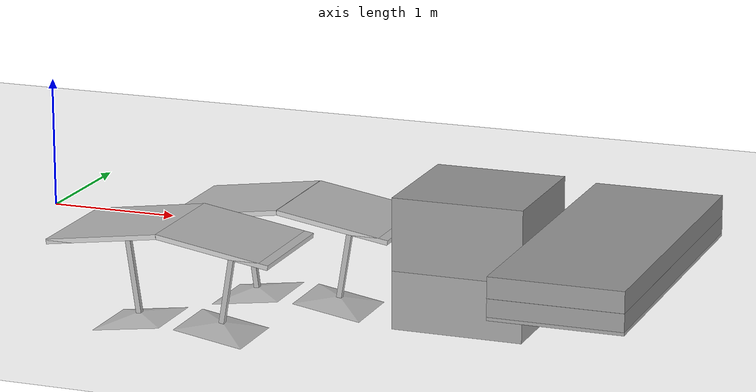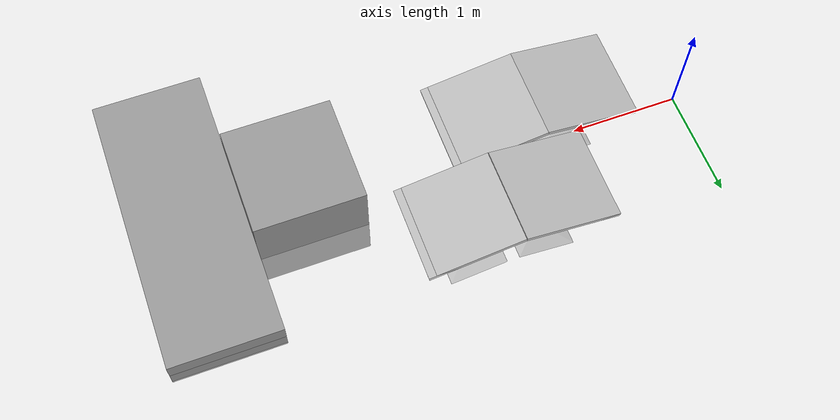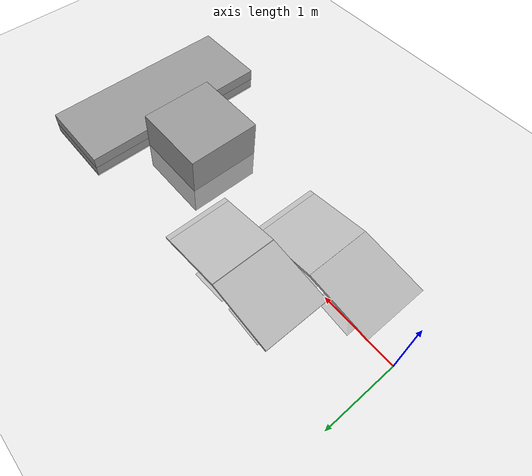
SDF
<sdf version="1.6">
 <world name="default">
  <light name="sun" type="directional">
   <pose>0 0 10 0 -0 0</pose>
   <diffuse>0.8 0.8 0.8 1</diffuse>
   <specular>0.2 0.2 0.2 1</specular>
   <attenuation>
    <range>1000</range>
    <constant>0.9</constant>
    <linear>0.01</linear>
    <quadratic>0.001</quadratic>
   </attenuation>
   <direction>-0.5 0.1 -0.9</direction>
  </light>
  <model name="ground_plane">
   <static>1</static>
   <link name="link">
    <collision name="collision">
     <geometry><plane><normal>0 0 1</normal><size>100 100</size></plane></geometry>
     <surface>
      <contact><collide_bitmask>65535</collide_bitmask></contact>
      <friction><ode><mu>400</mu><mu2>200</mu2></ode></friction>
     </surface>
    </collision>
    <visual name="visual">
     <cast_shadows>0</cast_shadows>
     <geometry><plane><normal>0 0 1</normal><size>100 100</size></plane></geometry>
     <material>
      <script><uri>file://media/materials/scripts/gazebo.material</uri><name>Gazebo/Grey</name></script>
     </material>
    </visual>
   </link>
  </model>
  <gravity>0 0 -9.8</gravity>
  <magnetic_field>6e-06 2.3e-05 -4.2e-05</magnetic_field>
  <atmosphere type="adiabatic"/>
  <physics name="default_physics" default="0" type="ode">
   <max_step_size>0.001</max_step_size>
   <real_time_factor>1</real_time_factor>
   <real_time_update_rate>1000</real_time_update_rate>
  </physics>
  <scene><ambient>0.4 0.4 0.4 1</ambient><background>0.7 0.7 0.7 1</background><shadows>1</shadows></scene>
  <spherical_coordinates>
   <surface_model>EARTH_WGS84</surface_model>
   <latitude_deg>0</latitude_deg>
   <longitude_deg>0</longitude_deg>
   <elevation>0</elevation>
   <heading_deg>0</heading_deg>
  </spherical_coordinates>
  <model name="cafe_table">
   <static>1</static>
   <link name="link">
    <collision name="surface">
     <pose>0 0 0.755 0 -0 0</pose>
     <geometry><box><size>0.913 0.913 0.04</size></box></geometry>
     <surface><friction><ode><mu>100</mu><mu2>50</mu2></ode></friction></surface>
    </collision>
    <collision name="column">
     <pose>0 0 0.37 0 -0 0</pose>
     <geometry><box><size>0.042 0.042 0.74</size></box></geometry>
    </collision>
    <collision name="base">
     <pose>0 0 0.02 0 -0 0</pose>
     <geometry><box><size>0.56 0.56 0.04</size></box></geometry>
    </collision>
    <visual name="visual">
     <geometry><mesh><uri>model://cafe_table/meshes/cafe_table.dae</uri></mesh></geometry>
    </visual>
   </link>
   <pose>0.919635 -0.460707 -0.701289 0 -0.140073 0</pose>
  </model>
  <model name="cafe_table_clone">
   <static>1</static>
   <link name="link">
    <collision name="surface">
     <pose>0 0 0.755 0 -0 0</pose>
     <geometry><box><size>0.913 0.913 0.04</size></box></geometry>
     <surface><friction><ode><mu>100</mu><mu2>50</mu2></ode></friction></surface>
    </collision>
    <collision name="column">
     <pose>0 0 0.37 0 -0 0</pose>
     <geometry><box><size>0.042 0.042 0.74</size></box></geometry>
    </collision>
    <collision name="base">
     <pose>0 0 0.02 0 -0 0</pose>
     <geometry><box><size>0.56 0.56 0.04</size></box></geometry>
    </collision>
    <visual name="visual">
     <geometry><mesh><uri>model://cafe_table/meshes/cafe_table.dae</uri></mesh></geometry>
    </visual>
   </link>
   <pose>1.58969 -0.458288 -0.707687 0 0.16322 0</pose>
  </model>
  <model name="cafe_table_clone_0">
   <static>1</static>
   <link name="link">
    <collision name="surface">
     <pose>0 0 0.755 0 -0 0</pose>
     <geometry><box><size>0.913 0.913 0.04</size></box></geometry>
     <surface><friction><ode><mu>100</mu><mu2>50</mu2></ode></friction></surface>
    </collision>
    <collision name="column">
     <pose>0 0 0.37 0 -0 0</pose>
     <geometry><box><size>0.042 0.042 0.74</size></box></geometry>
    </collision>
    <collision name="base">
     <pose>0 0 0.02 0 -0 0</pose>
     <geometry><box><size>0.56 0.56 0.04</size></box></geometry>
    </collision>
    <visual name="visual">
     <geometry><mesh><uri>model://cafe_table/meshes/cafe_table.dae</uri></mesh></geometry>
    </visual>
   </link>
   <pose>1.51161 0.460256 -0.701289 0 -0.140073 0</pose>
  </model>
  <model name="cafe_table_clone_clone">
   <static>1</static>
   <link name="link">
    <collision name="surface">
     <pose>0 0 0.755 0 -0 0</pose>
     <geometry><box><size>0.913 0.913 0.04</size></box></geometry>
     <surface><friction><ode><mu>100</mu><mu2>50</mu2></ode></friction></surface>
    </collision>
    <collision name="column">
     <pose>0 0 0.37 0 -0 0</pose>
     <geometry><box><size>0.042 0.042 0.74</size></box></geometry>
    </collision>
    <collision name="base">
     <pose>0 0 0.02 0 -0 0</pose>
     <geometry><box><size>0.56 0.56 0.04</size></box></geometry>
    </collision>
    <visual name="visual">
     <geometry><mesh><uri>model://cafe_table/meshes/cafe_table.dae</uri></mesh></geometry>
    </visual>
   </link>
   <pose>2.18769 0.46046 -0.707687 0 0.16322 0</pose>
  </model>
  <model name="unit_box">
   <pose>3.57827 -0.253212 0.049698 0 -0 0</pose>
   <link name="link">
    <inertial>
     <mass>1</mass>
     <inertia>
      <ixx>0.166667</ixx>
      <ixy>0</ixy>
      <ixz>0</ixz>
      <iyy>0.166667</iyy>
      <iyz>0</iyz>
      <izz>0.166667</izz>
     </inertia>
    </inertial>
    <collision name="collision"><geometry><box><size>1 1 0.999994</size></box></geometry></collision>
    <visual name="visual">
     <geometry><box><size>1 1 0.999994</size></box></geometry>
     <material>
      <script><name>Gazebo/Grey</name><uri>file://media/materials/scripts/gazebo.material</uri></script>
     </material>
    </visual>
    <kinematic>1</kinematic>
   </link>
  </model>
  <model name="unit_box_clone">
   <pose>4.57825 -0.249736 0.209299 0 -0 0</pose>
   <link name="link">
    <inertial>
     <mass>1</mass>
     <inertia>
      <ixx>0.166667</ixx>
      <ixy>0</ixy>
      <ixz>0</ixz>
      <iyy>0.166667</iyy>
      <iyz>0</iyz>
      <izz>0.166667</izz>
     </inertia>
    </inertial>
    <collision name="collision"><geometry><box><size>1 2.60794 0.160452</size></box></geometry></collision>
    <visual name="visual">
     <geometry><box><size>1 2.60794 0.160452</size></box></geometry>
     <material>
      <script><name>Gazebo/Grey</name><uri>file://media/materials/scripts/gazebo.material</uri></script>
     </material>
    </visual>
    <kinematic>1</kinematic>
   </link>
  </model>
  <model name="unit_box_clone_clone">
   <pose>4.57897 -0.250698 0.049923 0 -0 0</pose>
   <link name="link">
    <inertial>
     <mass>1</mass>
     <inertia>
      <ixx>0.166667</ixx>
      <ixy>0</ixy>
      <ixz>0</ixz>
      <iyy>0.166667</iyy>
      <iyz>0</iyz>
      <izz>0.166667</izz>
     </inertia>
    </inertial>
    <collision name="collision"><geometry><box><size>1 2.60794 0.160452</size></box></geometry></collision>
    <visual name="visual">
     <geometry><box><size>1 2.60794 0.160452</size></box></geometry>
     <material>
      <script><name>Gazebo/Grey</name><uri>file://media/materials/scripts/gazebo.material</uri></script>
     </material>
    </visual>
    <kinematic>1</kinematic>
   </link>
  </model>
 </world>
</sdf>
